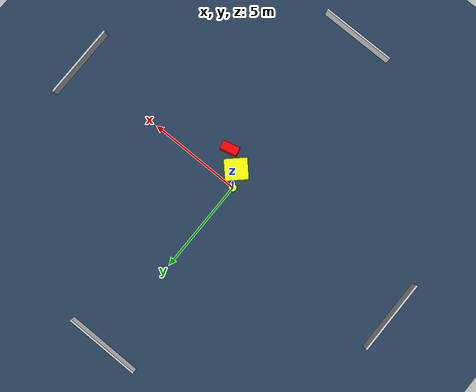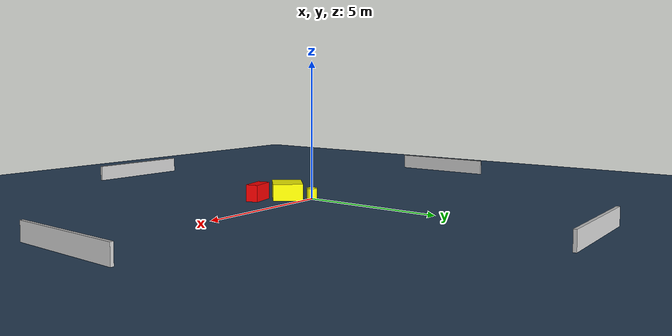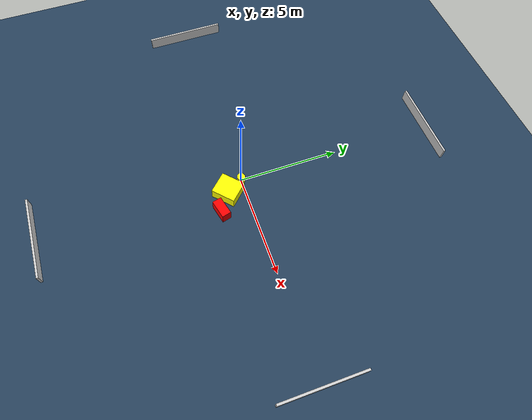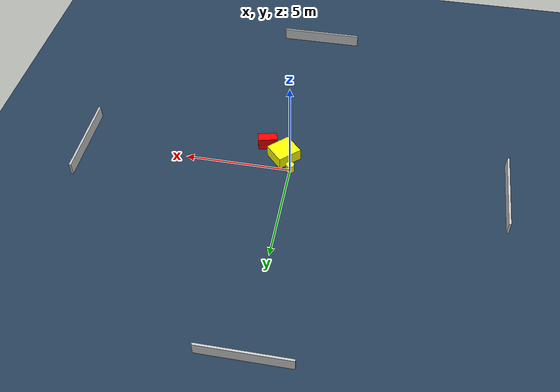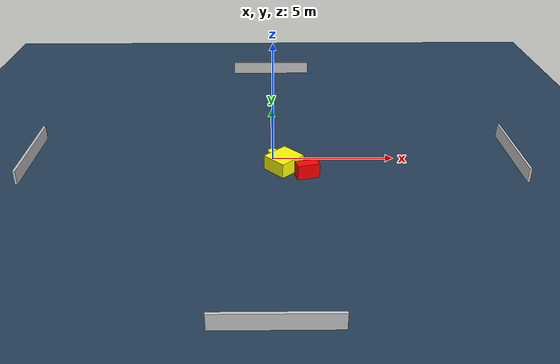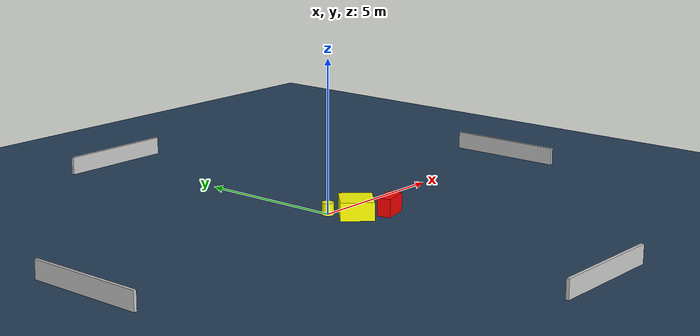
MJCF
<?xml version="1.0" ?>
<mujoco model="generated_environment">
  <option timestep="0.01" integrator="RK4" cone="elliptic"/>
  <default>
    <geom density="1"/>
  </default>
  <asset>
    <texture builtin="gradient" height="3072" name="skybox" rgb1="0.3 0.5 0.7" rgb2="0 0 0" type="skybox" width="512"/>
    <texture builtin="checker" height="300" name="groundplane" rgb1="0.2 0.3 0.4" rgb2="0.1 0.2 0.3" type="2d" width="300"/>
    <material name="groundplane" reflectance="0.2" texrepeat="5 5" texture="groundplane"/>
  </asset>
  <worldbody>
    <light dir="0 0 -1" directional="true" pos="0 0 1.5"/>
    <geom condim="3" friction="0.5 0.005 0.001" material="groundplane" name="floor" pos="0 0 0" size="0 0 0.05" type="plane"/>
    <body name="walls">
      <geom name="wall_1" condim="4" pos="-10.0 0.0 0.3" rgba="0.800000011920929 0.800000011920929 0.800000011920929 1.0" size="0.05 2.0 0.3" type="box"/>
      <geom name="wall_2" condim="4" pos="10.0 0.0 0.3" rgba="0.800000011920929 0.800000011920929 0.800000011920929 1.0" size="0.05 2.0 0.3" type="box"/>
      <geom name="wall_3" condim="4" pos="0.0 -10.0 0.3" rgba="0.800000011920929 0.800000011920929 0.800000011920929 1.0" size="2.0 0.05 0.3" type="box"/>
      <geom name="wall_4" condim="4" pos="0.0 10.0 0.3" rgba="0.800000011920929 0.800000011920929 0.800000011920929 1.0" size="2.0 0.05 0.3" type="box"/>
    </body>
    <body name="robot">
      <joint name="joint_x" type="slide" pos="0 0 0" axis="1 0 0"/>
      <joint name="joint_y" type="slide" pos="0 0 0" axis="0 1 0"/>
      <geom name="robot" type="cylinder" pos="0.0 0.0 0.2" size="0.2 0.2 0.0" mass="5.0" friction="1.0 0.005 0.0001" condim="4" rgba="1.0 1.0 0.0 1.0"/>
    </body>
    <body name="obstacle_1_movable">
      <geom name="obstacle_1_movable" condim="4" pos="0.438175493332231 -0.8030585761906072 0.3" euler="0 0 43.41864780798173" friction="0.0 0.005 0.001" rgba="1.0 1.0 0.0 1.0" size="0.5924093005033285 0.5413922959578242 0.3" type="box" mass="0.1"/>
      <joint type="free"/>
    </body>
    <body name="obstacle_2_static">
      <geom name="obstacle_2_static" condim="4" pos="1.3516105586132718 -1.4220075773669347 0.3" euler="0 0 283.9984134464478" friction="0.0 0.005 0.001" rgba="1.0 0.0 0.0 1.0" size="0.22552216803225392 0.45283304544558334 0.3" type="box"/>
    </body>
  </worldbody>
  <actuator>
    <motor name="actuator_x" joint="joint_x" gear="1" ctrlrange="-1 1"/>
    <motor name="actuator_y" joint="joint_y" gear="1" ctrlrange="-1 1"/>
  </actuator>
</mujoco>
